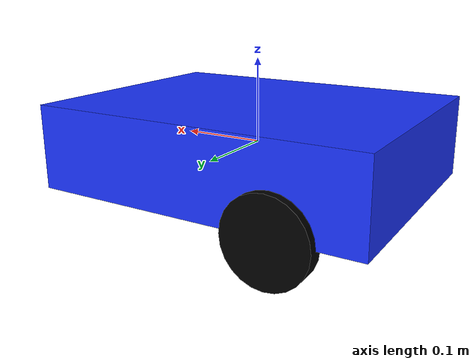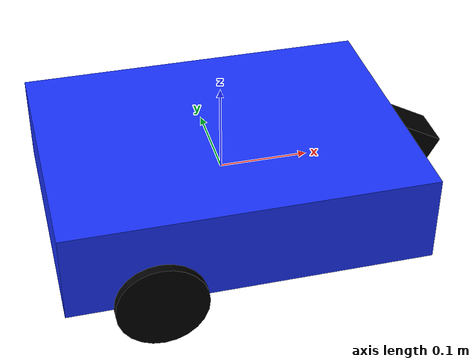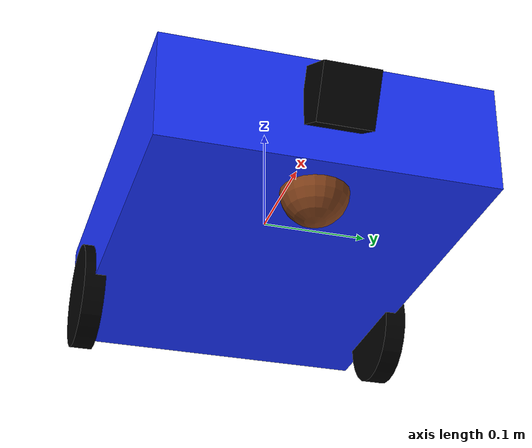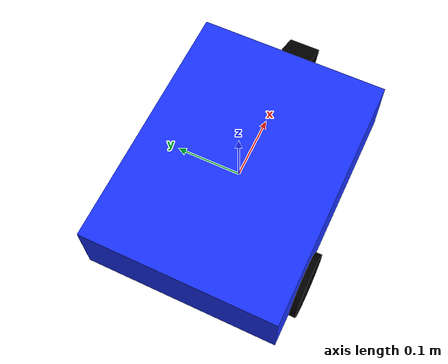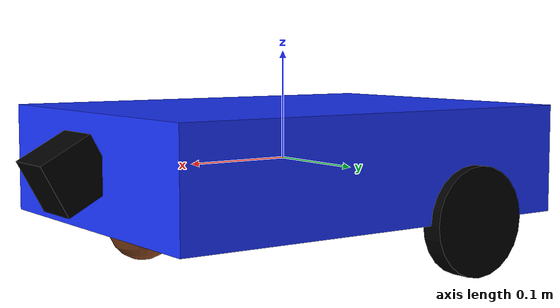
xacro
<?xml version="1.0"?>
<robot name="two_wheel_robot" xmlns:xacro="http://ros.org/wiki/xacro">

  <xacro:property name="wheel_radius" value="0.05"/>
  <xacro:property name="wheel_width" value="0.02"/>
  <xacro:property name="body_length" value="0.4"/>
  <xacro:property name="body_width" value="0.3"/>
  <xacro:property name="body_height" value="0.1"/>

  <!-- Materials -->
  <material name="blue">
    <color rgba="0.1 0.2 1.0 1.0"/>
  </material>

  <material name="black">
    <color rgba="0.0 0.0 0.0 1.0"/>
  </material>

  <material name="brown">
    <color rgba="0.5 0.25 0.1 1.0"/>
  </material>

  <!-- Base link -->
  <link name="base_link">
    <visual>
      <geometry>
        <box size="${body_length} ${body_width} ${body_height}"/>
      </geometry>
      <material name="blue"/>
    </visual>
    <collision>
      <geometry>
        <box size="${body_length} ${body_width} ${body_height}"/>
      </geometry>
    </collision>
    <inertial>
      <mass value="2.0"/>
      <inertia ixx="0.1" ixy="0.0" ixz="0.0"
               iyy="0.1" iyz="0.0"
               izz="0.1"/>
    </inertial>
  </link>

  <!-- Left Wheel -->
  <link name="left_wheel">
    <visual>
      <geometry>
        <cylinder radius="${wheel_radius}" length="${wheel_width}"/>
      </geometry>
      <origin xyz="0 0 0" rpy="1.5708 0 0"/>
      <material name="black"/>
    </visual>
    <collision>
      <geometry>
        <cylinder radius="${wheel_radius}" length="${wheel_width}"/>
      </geometry>
      <origin xyz="0 0 0" rpy="1.5708 0 0"/>
    </collision>
    <inertial>
      <mass value="0.5"/>
      <inertia ixx="0.02" ixy="0.0" ixz="0.0"
               iyy="0.02" iyz="0.0"
               izz="0.02"/>
    </inertial>
  </link>

  <!-- Right Wheel -->
  <link name="right_wheel">
    <visual>
      <geometry>
        <cylinder radius="${wheel_radius}" length="${wheel_width}"/>
      </geometry>
      <origin xyz="0 0 0" rpy="1.5708 0 0"/>
      <material name="black"/>
    </visual>
    <collision>
      <geometry>
        <cylinder radius="${wheel_radius}" length="${wheel_width}"/>
      </geometry>
      <origin xyz="0 0 0" rpy="1.5708 0 0"/>
    </collision>
    <inertial>
      <mass value="0.5"/>
      <inertia ixx="0.02" ixy="0.0" ixz="0.0"
               iyy="0.02" iyz="0.0"
               izz="0.02"/>
    </inertial>
  </link>

  <!-- Caster Wheel -->
  <link name="caster_wheel">
    <visual>
      <geometry>
        <sphere radius="0.03"/>
      </geometry>
      <material name="brown"/>
    </visual>
    <collision>
      <geometry>
        <sphere radius="0.03"/>
      </geometry>
    </collision>
    <inertial>
      <mass value="0.1"/>
      <inertia ixx="0.01" ixy="0.0" ixz="0.0"
               iyy="0.01" iyz="0.0"
               izz="0.01"/>
    </inertial>
  </link>

   <!-- Dummy link to avoid root inertia warning -->
<link name="dummy_link"/>
<joint name="base_fixed_joint" type="fixed">
  <parent link="dummy_link"/>
  <child link="base_link"/>
</joint>

  <!-- Camera Link -->
<link name="camera_link">
  <visual>
    <geometry>
      <box size="0.05 0.05 0.05"/>
    </geometry>
    <origin xyz="0 0 0" rpy="0 0 0"/>
    <material name="black"/>
  </visual>
  <collision>
    <geometry>
      <box size="0.05 0.05 0.05"/>
    </geometry>
    <origin xyz="0 0 0" rpy="0 0 0"/>
  </collision>
  <inertial>
    <mass value="0.1"/>
    <inertia ixx="0.001" ixy="0.0" ixz="0.0"
             iyy="0.001" iyz="0.0"
             izz="0.001"/>
  </inertial>
</link>

  <!-- Joints -->
  <joint name="left_wheel_joint" type="continuous">
    <parent link="base_link"/>
    <child link="left_wheel"/>
    <origin xyz="-0.1 ${body_width/2} ${-wheel_radius}" rpy="0 0 0"/>
    <axis xyz="0 1 0"/>
  </joint>

  <joint name="right_wheel_joint" type="continuous">
    <parent link="base_link"/>
    <child link="right_wheel"/>
    <origin xyz="-0.1 ${-body_width/2} ${-wheel_radius}" rpy="0 0 0"/>
    <axis xyz="0 1 0"/>
  </joint>

  <joint name="caster_joint" type="fixed">
    <parent link="base_link"/>
    <child link="caster_wheel"/>
    <origin xyz="${body_length/2 - 0.05} 0 ${-wheel_radius}" rpy="0 0 0"/>
  </joint>

<joint name="camera_joint" type="fixed">
  <parent link="base_link"/>
  <child link="camera_link"/>
<origin xyz="0.22 0 0" rpy="0 0.5 0"/>
</joint>

   <!-- Gazebo Material Overrides (for Gazebo to show color) -->
  <gazebo reference="base_link">
    <material>Gazebo/Blue</material>
  </gazebo>
  <gazebo reference="left_wheel">
    <material>Gazebo/Black</material>
  </gazebo>
  <gazebo reference="right_wheel">
    <material>Gazebo/Black</material>
  </gazebo>
  <gazebo reference="caster_wheel">
    <material>Gazebo/Brown</material> <!-- not a standard, but close -->
  </gazebo>

  <!-- Gazebo Plugin -->
<gazebo>
  <plugin name="diff_drive" filename="libgazebo_ros_diff_drive.so">
    <ros>
      <namespace>/</namespace>
    </ros>
    <leftJoint>left_wheel_joint</leftJoint>
    <rightJoint>right_wheel_joint</rightJoint>
    <wheelSeparation>${body_width}</wheelSeparation>
    <wheelDiameter>${2 * wheel_radius}</wheelDiameter>
    <torque>5.0</torque>
    <commandTopic>cmd_vel</commandTopic>
    <odometryTopic>odom</odometryTopic>
    <robotBaseFrame>base_link</robotBaseFrame>

    <!-- Additional optional parameters to silence warnings -->
    <publishWheelTF>false</publishWheelTF>
    <publishOdomTF>true</publishOdomTF>
    <publishWheelJointState>true</publishWheelJointState>
    <wheelAcceleration>0.0</wheelAcceleration>
    <wheelTorque>5.0</wheelTorque>
    <updateRate>100.0</updateRate>
    <odometrySource>1</odometrySource>
    <publishTf>true</publishTf>
    <rosDebugLevel>info</rosDebugLevel>
  </plugin>
</gazebo>

  <gazebo reference="camera_link">
  <sensor name="front_camera" type="camera">
    <always_on>true</always_on>
    <update_rate>30</update_rate>
    <camera>
      <horizontal_fov>1.047</horizontal_fov>
      <image>
        <width>640</width>
        <height>480</height>
        <format>R8G8B8</format>
      </image>
      <clip>
        <near>0.1</near>
        <far>100</far>
      </clip>
    </camera>
    <plugin name="camera_controller" filename="libgazebo_ros_camera.so">
      <alwaysOn>true</alwaysOn>
      <updateRate>30</updateRate>
      <cameraName>front_camera</cameraName>
      <imageTopicName>image_raw</imageTopicName>
      <cameraInfoTopicName>camera_info</cameraInfoTopicName>
      <frameName>camera_link</frameName>
    </plugin>
  </sensor>
</gazebo>

</robot>
